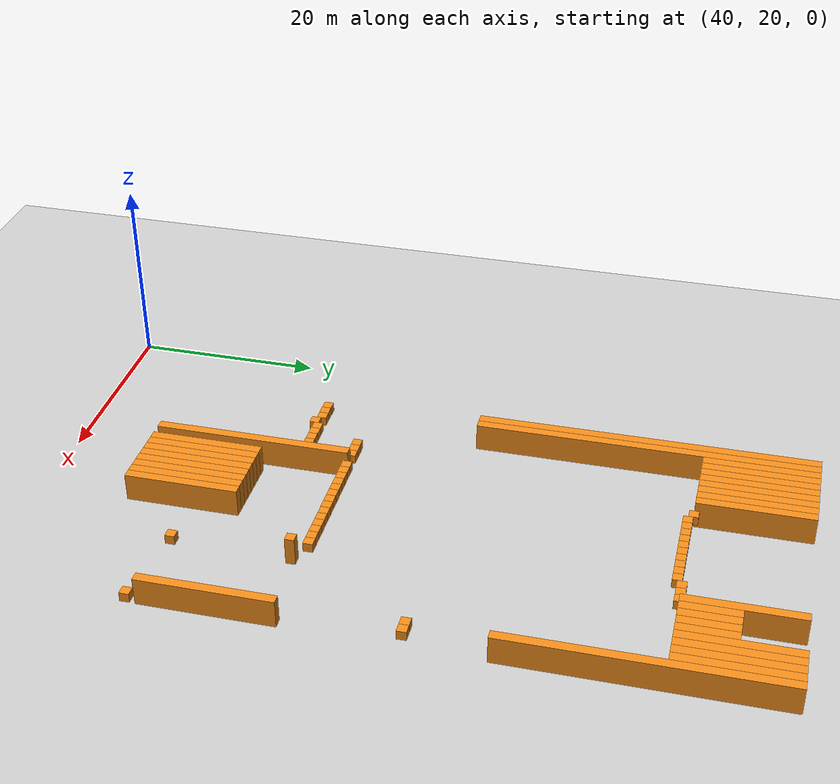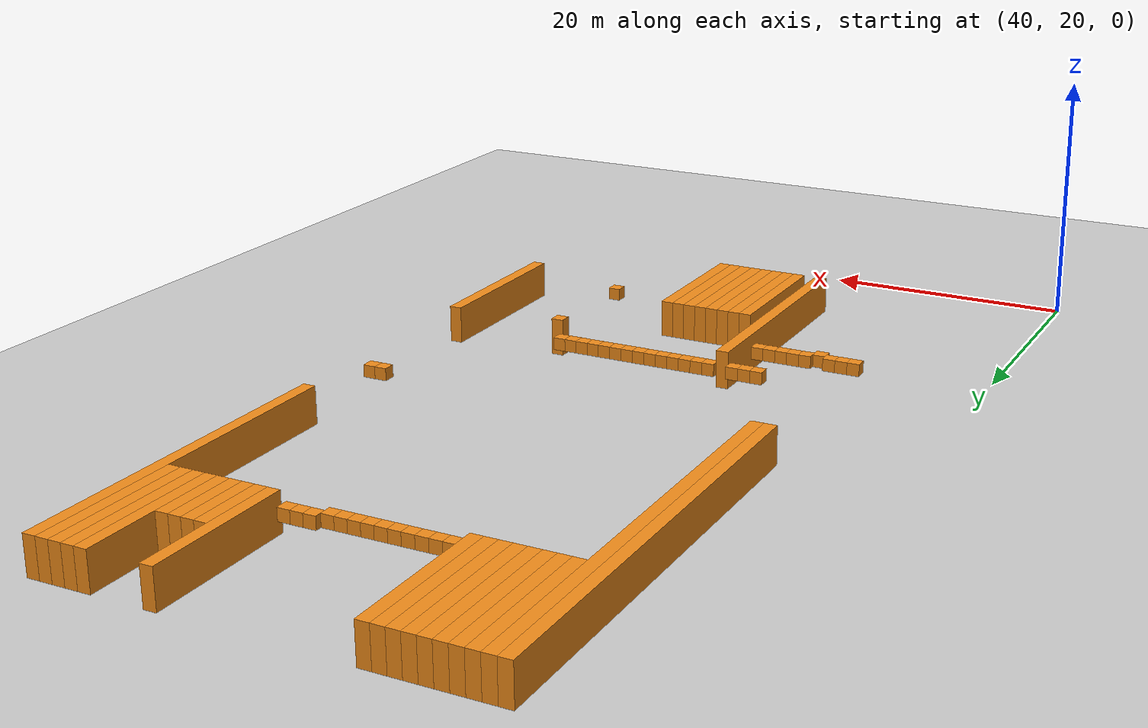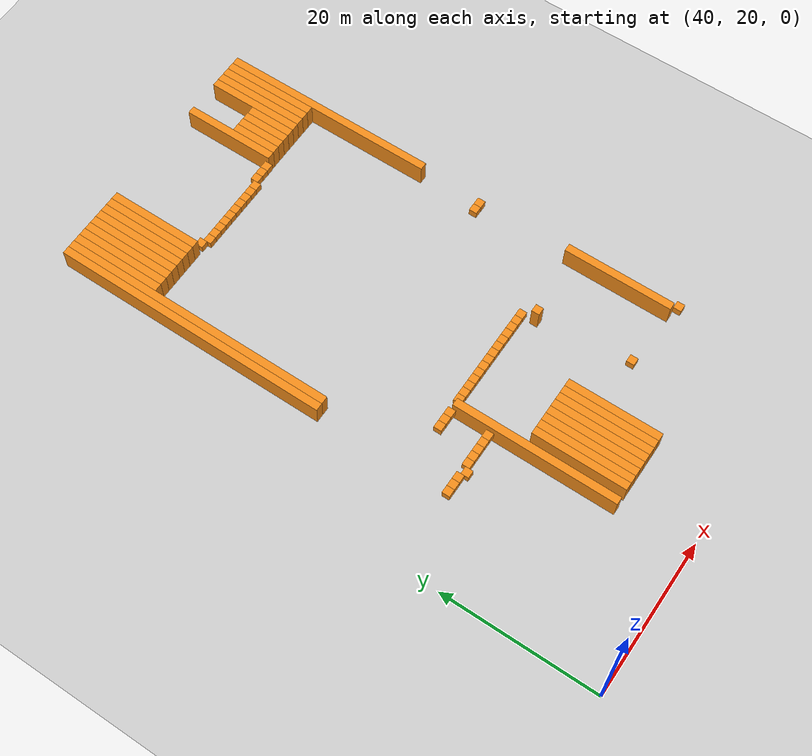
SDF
<sdf version="1.6">
 <world name="default">
  <include><uri>model://ground_plane</uri></include>
  <model name="unit_box_537">
   <pose>49.50    45.00     1.50 0 0 0</pose>
   <static>1</static>
   <link name="link">
    <inertial>
     <mass>5000</mass>
     <inertia><ixx>200</ixx><ixy>0</ixy><ixz>0</ixz><iyy>200</iyy><iyz>0</iyz><izz>200</izz></inertia>
    </inertial>
    <collision name="collision"><geometry><box><size>1 1 1</size></box></geometry></collision>
    <visual name="visual">
     <geometry><box><size>1 1 1</size></box></geometry>
     <material>
      <script><name>Gazebo/Orange</name><uri>file://media/materials/scripts/gazebo.material</uri></script>
     </material>
    </visual>
   </link>
  </model>
  <model name="unit_box_538">
   <pose>49.50    80.00     1.50 0 0 0</pose>
   <static>1</static>
   <link name="link">
    <inertial>
     <mass>5000</mass>
     <inertia><ixx>200</ixx><ixy>0</ixy><ixz>0</ixz><iyy>200</iyy><iyz>0</iyz><izz>200</izz></inertia>
    </inertial>
    <collision name="collision"><geometry><box><size>1 36 3</size></box></geometry></collision>
    <visual name="visual">
     <geometry><box><size>1 36 3</size></box></geometry>
     <material>
      <script><name>Gazebo/Orange</name><uri>file://media/materials/scripts/gazebo.material</uri></script>
     </material>
    </visual>
   </link>
  </model>
  <model name="unit_box_552">
   <pose>50.50    45.00     1.50 0 0 0</pose>
   <static>1</static>
   <link name="link">
    <inertial>
     <mass>5000</mass>
     <inertia><ixx>200</ixx><ixy>0</ixy><ixz>0</ixz><iyy>200</iyy><iyz>0</iyz><izz>200</izz></inertia>
    </inertial>
    <collision name="collision"><geometry><box><size>1 1 1</size></box></geometry></collision>
    <visual name="visual">
     <geometry><box><size>1 1 1</size></box></geometry>
     <material>
      <script><name>Gazebo/Orange</name><uri>file://media/materials/scripts/gazebo.material</uri></script>
     </material>
    </visual>
   </link>
  </model>
  <model name="unit_box_553">
   <pose>50.50    80.00     1.50 0 0 0</pose>
   <static>1</static>
   <link name="link">
    <inertial>
     <mass>5000</mass>
     <inertia><ixx>200</ixx><ixy>0</ixy><ixz>0</ixz><iyy>200</iyy><iyz>0</iyz><izz>200</izz></inertia>
    </inertial>
    <collision name="collision"><geometry><box><size>1 36 3</size></box></geometry></collision>
    <visual name="visual">
     <geometry><box><size>1 36 3</size></box></geometry>
     <material>
      <script><name>Gazebo/Orange</name><uri>file://media/materials/scripts/gazebo.material</uri></script>
     </material>
    </visual>
   </link>
  </model>
  <model name="unit_box_564">
   <pose>51.50    45.00     1.50 0 0 0</pose>
   <static>1</static>
   <link name="link">
    <inertial>
     <mass>5000</mass>
     <inertia><ixx>200</ixx><ixy>0</ixy><ixz>0</ixz><iyy>200</iyy><iyz>0</iyz><izz>200</izz></inertia>
    </inertial>
    <collision name="collision"><geometry><box><size>1 1 1</size></box></geometry></collision>
    <visual name="visual">
     <geometry><box><size>1 1 1</size></box></geometry>
     <material>
      <script><name>Gazebo/Orange</name><uri>file://media/materials/scripts/gazebo.material</uri></script>
     </material>
    </visual>
   </link>
  </model>
  <model name="unit_box_565">
   <pose>51.50    92.00     1.50 0 0 0</pose>
   <static>1</static>
   <link name="link">
    <inertial>
     <mass>5000</mass>
     <inertia><ixx>200</ixx><ixy>0</ixy><ixz>0</ixz><iyy>200</iyy><iyz>0</iyz><izz>200</izz></inertia>
    </inertial>
    <collision name="collision"><geometry><box><size>1 12 3</size></box></geometry></collision>
    <visual name="visual">
     <geometry><box><size>1 12 3</size></box></geometry>
     <material>
      <script><name>Gazebo/Orange</name><uri>file://media/materials/scripts/gazebo.material</uri></script>
     </material>
    </visual>
   </link>
  </model>
  <model name="unit_box_575">
   <pose>52.50    44.50     1.50 0 0 0</pose>
   <static>1</static>
   <link name="link">
    <inertial>
     <mass>5000</mass>
     <inertia><ixx>200</ixx><ixy>0</ixy><ixz>0</ixz><iyy>200</iyy><iyz>0</iyz><izz>200</izz></inertia>
    </inertial>
    <collision name="collision"><geometry><box><size>1 1 1</size></box></geometry></collision>
    <visual name="visual">
     <geometry><box><size>1 1 1</size></box></geometry>
     <material>
      <script><name>Gazebo/Orange</name><uri>file://media/materials/scripts/gazebo.material</uri></script>
     </material>
    </visual>
   </link>
  </model>
  <model name="unit_box_576">
   <pose>52.50    92.00     1.50 0 0 0</pose>
   <static>1</static>
   <link name="link">
    <inertial>
     <mass>5000</mass>
     <inertia><ixx>200</ixx><ixy>0</ixy><ixz>0</ixz><iyy>200</iyy><iyz>0</iyz><izz>200</izz></inertia>
    </inertial>
    <collision name="collision"><geometry><box><size>1 12 3</size></box></geometry></collision>
    <visual name="visual">
     <geometry><box><size>1 12 3</size></box></geometry>
     <material>
      <script><name>Gazebo/Orange</name><uri>file://media/materials/scripts/gazebo.material</uri></script>
     </material>
    </visual>
   </link>
  </model>
  <model name="unit_box_585">
   <pose>53.50    45.00     1.50 0 0 0</pose>
   <static>1</static>
   <link name="link">
    <inertial>
     <mass>5000</mass>
     <inertia><ixx>200</ixx><ixy>0</ixy><ixz>0</ixz><iyy>200</iyy><iyz>0</iyz><izz>200</izz></inertia>
    </inertial>
    <collision name="collision"><geometry><box><size>1 1 1</size></box></geometry></collision>
    <visual name="visual">
     <geometry><box><size>1 1 1</size></box></geometry>
     <material>
      <script><name>Gazebo/Orange</name><uri>file://media/materials/scripts/gazebo.material</uri></script>
     </material>
    </visual>
   </link>
  </model>
  <model name="unit_box_586">
   <pose>53.50    92.00     1.50 0 0 0</pose>
   <static>1</static>
   <link name="link">
    <inertial>
     <mass>5000</mass>
     <inertia><ixx>200</ixx><ixy>0</ixy><ixz>0</ixz><iyy>200</iyy><iyz>0</iyz><izz>200</izz></inertia>
    </inertial>
    <collision name="collision"><geometry><box><size>1 12 3</size></box></geometry></collision>
    <visual name="visual">
     <geometry><box><size>1 12 3</size></box></geometry>
     <material>
      <script><name>Gazebo/Orange</name><uri>file://media/materials/scripts/gazebo.material</uri></script>
     </material>
    </visual>
   </link>
  </model>
  <model name="unit_box_596">
   <pose>54.50    45.00     1.50 0 0 0</pose>
   <static>1</static>
   <link name="link">
    <inertial>
     <mass>5000</mass>
     <inertia><ixx>200</ixx><ixy>0</ixy><ixz>0</ixz><iyy>200</iyy><iyz>0</iyz><izz>200</izz></inertia>
    </inertial>
    <collision name="collision"><geometry><box><size>1 1 1</size></box></geometry></collision>
    <visual name="visual">
     <geometry><box><size>1 1 1</size></box></geometry>
     <material>
      <script><name>Gazebo/Orange</name><uri>file://media/materials/scripts/gazebo.material</uri></script>
     </material>
    </visual>
   </link>
  </model>
  <model name="unit_box_597">
   <pose>54.50    92.00     1.50 0 0 0</pose>
   <static>1</static>
   <link name="link">
    <inertial>
     <mass>5000</mass>
     <inertia><ixx>200</ixx><ixy>0</ixy><ixz>0</ixz><iyy>200</iyy><iyz>0</iyz><izz>200</izz></inertia>
    </inertial>
    <collision name="collision"><geometry><box><size>1 12 3</size></box></geometry></collision>
    <visual name="visual">
     <geometry><box><size>1 12 3</size></box></geometry>
     <material>
      <script><name>Gazebo/Orange</name><uri>file://media/materials/scripts/gazebo.material</uri></script>
     </material>
    </visual>
   </link>
  </model>
  <model name="unit_box_604">
   <pose>55.50    45.00     1.50 0 0 0</pose>
   <static>1</static>
   <link name="link">
    <inertial>
     <mass>5000</mass>
     <inertia><ixx>200</ixx><ixy>0</ixy><ixz>0</ixz><iyy>200</iyy><iyz>0</iyz><izz>200</izz></inertia>
    </inertial>
    <collision name="collision"><geometry><box><size>1 1 1</size></box></geometry></collision>
    <visual name="visual">
     <geometry><box><size>1 1 1</size></box></geometry>
     <material>
      <script><name>Gazebo/Orange</name><uri>file://media/materials/scripts/gazebo.material</uri></script>
     </material>
    </visual>
   </link>
  </model>
  <model name="unit_box_605">
   <pose>55.50    50.00     1.50 0 0 0</pose>
   <static>1</static>
   <link name="link">
    <inertial>
     <mass>5000</mass>
     <inertia><ixx>200</ixx><ixy>0</ixy><ixz>0</ixz><iyy>200</iyy><iyz>0</iyz><izz>200</izz></inertia>
    </inertial>
    <collision name="collision"><geometry><box><size>1 1 1</size></box></geometry></collision>
    <visual name="visual">
     <geometry><box><size>1 1 1</size></box></geometry>
     <material>
      <script><name>Gazebo/Orange</name><uri>file://media/materials/scripts/gazebo.material</uri></script>
     </material>
    </visual>
   </link>
  </model>
  <model name="unit_box_606">
   <pose>55.50    92.00     1.50 0 0 0</pose>
   <static>1</static>
   <link name="link">
    <inertial>
     <mass>5000</mass>
     <inertia><ixx>200</ixx><ixy>0</ixy><ixz>0</ixz><iyy>200</iyy><iyz>0</iyz><izz>200</izz></inertia>
    </inertial>
    <collision name="collision"><geometry><box><size>1 12 3</size></box></geometry></collision>
    <visual name="visual">
     <geometry><box><size>1 12 3</size></box></geometry>
     <material>
      <script><name>Gazebo/Orange</name><uri>file://media/materials/scripts/gazebo.material</uri></script>
     </material>
    </visual>
   </link>
  </model>
  <model name="unit_box_613">
   <pose>56.50    45.00     1.50 0 0 0</pose>
   <static>1</static>
   <link name="link">
    <inertial>
     <mass>5000</mass>
     <inertia><ixx>200</ixx><ixy>0</ixy><ixz>0</ixz><iyy>200</iyy><iyz>0</iyz><izz>200</izz></inertia>
    </inertial>
    <collision name="collision"><geometry><box><size>1 1 1</size></box></geometry></collision>
    <visual name="visual">
     <geometry><box><size>1 1 1</size></box></geometry>
     <material>
      <script><name>Gazebo/Orange</name><uri>file://media/materials/scripts/gazebo.material</uri></script>
     </material>
    </visual>
   </link>
  </model>
  <model name="unit_box_614">
   <pose>56.50    50.00     1.50 0 0 0</pose>
   <static>1</static>
   <link name="link">
    <inertial>
     <mass>5000</mass>
     <inertia><ixx>200</ixx><ixy>0</ixy><ixz>0</ixz><iyy>200</iyy><iyz>0</iyz><izz>200</izz></inertia>
    </inertial>
    <collision name="collision"><geometry><box><size>1 1 1</size></box></geometry></collision>
    <visual name="visual">
     <geometry><box><size>1 1 1</size></box></geometry>
     <material>
      <script><name>Gazebo/Orange</name><uri>file://media/materials/scripts/gazebo.material</uri></script>
     </material>
    </visual>
   </link>
  </model>
  <model name="unit_box_615">
   <pose>56.50    92.00     1.50 0 0 0</pose>
   <static>1</static>
   <link name="link">
    <inertial>
     <mass>5000</mass>
     <inertia><ixx>200</ixx><ixy>0</ixy><ixz>0</ixz><iyy>200</iyy><iyz>0</iyz><izz>200</izz></inertia>
    </inertial>
    <collision name="collision"><geometry><box><size>1 12 3</size></box></geometry></collision>
    <visual name="visual">
     <geometry><box><size>1 12 3</size></box></geometry>
     <material>
      <script><name>Gazebo/Orange</name><uri>file://media/materials/scripts/gazebo.material</uri></script>
     </material>
    </visual>
   </link>
  </model>
  <model name="unit_box_623">
   <pose>57.50    45.00     1.50 0 0 0</pose>
   <static>1</static>
   <link name="link">
    <inertial>
     <mass>5000</mass>
     <inertia><ixx>200</ixx><ixy>0</ixy><ixz>0</ixz><iyy>200</iyy><iyz>0</iyz><izz>200</izz></inertia>
    </inertial>
    <collision name="collision"><geometry><box><size>1 1 1</size></box></geometry></collision>
    <visual name="visual">
     <geometry><box><size>1 1 1</size></box></geometry>
     <material>
      <script><name>Gazebo/Orange</name><uri>file://media/materials/scripts/gazebo.material</uri></script>
     </material>
    </visual>
   </link>
  </model>
  <model name="unit_box_624">
   <pose>57.50    50.00     1.50 0 0 0</pose>
   <static>1</static>
   <link name="link">
    <inertial>
     <mass>5000</mass>
     <inertia><ixx>200</ixx><ixy>0</ixy><ixz>0</ixz><iyy>200</iyy><iyz>0</iyz><izz>200</izz></inertia>
    </inertial>
    <collision name="collision"><geometry><box><size>1 1 1</size></box></geometry></collision>
    <visual name="visual">
     <geometry><box><size>1 1 1</size></box></geometry>
     <material>
      <script><name>Gazebo/Orange</name><uri>file://media/materials/scripts/gazebo.material</uri></script>
     </material>
    </visual>
   </link>
  </model>
  <model name="unit_box_625">
   <pose>57.50    92.00     1.50 0 0 0</pose>
   <static>1</static>
   <link name="link">
    <inertial>
     <mass>5000</mass>
     <inertia><ixx>200</ixx><ixy>0</ixy><ixz>0</ixz><iyy>200</iyy><iyz>0</iyz><izz>200</izz></inertia>
    </inertial>
    <collision name="collision"><geometry><box><size>1 12 3</size></box></geometry></collision>
    <visual name="visual">
     <geometry><box><size>1 12 3</size></box></geometry>
     <material>
      <script><name>Gazebo/Orange</name><uri>file://media/materials/scripts/gazebo.material</uri></script>
     </material>
    </visual>
   </link>
  </model>
  <model name="unit_box_633">
   <pose>58.50    39.50     1.50 0 0 0</pose>
   <static>1</static>
   <link name="link">
    <inertial>
     <mass>5000</mass>
     <inertia><ixx>200</ixx><ixy>0</ixy><ixz>0</ixz><iyy>200</iyy><iyz>0</iyz><izz>200</izz></inertia>
    </inertial>
    <collision name="collision"><geometry><box><size>1 21 3</size></box></geometry></collision>
    <visual name="visual">
     <geometry><box><size>1 21 3</size></box></geometry>
     <material>
      <script><name>Gazebo/Orange</name><uri>file://media/materials/scripts/gazebo.material</uri></script>
     </material>
    </visual>
   </link>
  </model>
  <model name="unit_box_634">
   <pose>58.50    92.00     1.50 0 0 0</pose>
   <static>1</static>
   <link name="link">
    <inertial>
     <mass>5000</mass>
     <inertia><ixx>200</ixx><ixy>0</ixy><ixz>0</ixz><iyy>200</iyy><iyz>0</iyz><izz>200</izz></inertia>
    </inertial>
    <collision name="collision"><geometry><box><size>1 12 3</size></box></geometry></collision>
    <visual name="visual">
     <geometry><box><size>1 12 3</size></box></geometry>
     <material>
      <script><name>Gazebo/Orange</name><uri>file://media/materials/scripts/gazebo.material</uri></script>
     </material>
    </visual>
   </link>
  </model>
  <model name="unit_box_644">
   <pose>59.50    50.00     1.50 0 0 0</pose>
   <static>1</static>
   <link name="link">
    <inertial>
     <mass>5000</mass>
     <inertia><ixx>200</ixx><ixy>0</ixy><ixz>0</ixz><iyy>200</iyy><iyz>0</iyz><izz>200</izz></inertia>
    </inertial>
    <collision name="collision"><geometry><box><size>1 1 1</size></box></geometry></collision>
    <visual name="visual">
     <geometry><box><size>1 1 1</size></box></geometry>
     <material>
      <script><name>Gazebo/Orange</name><uri>file://media/materials/scripts/gazebo.material</uri></script>
     </material>
    </visual>
   </link>
  </model>
  <model name="unit_box_645">
   <pose>59.50    86.00     1.50 0 0 0</pose>
   <static>1</static>
   <link name="link">
    <inertial>
     <mass>5000</mass>
     <inertia><ixx>200</ixx><ixy>0</ixy><ixz>0</ixz><iyy>200</iyy><iyz>0</iyz><izz>200</izz></inertia>
    </inertial>
    <collision name="collision"><geometry><box><size>1 1 1</size></box></geometry></collision>
    <visual name="visual">
     <geometry><box><size>1 1 1</size></box></geometry>
     <material>
      <script><name>Gazebo/Orange</name><uri>file://media/materials/scripts/gazebo.material</uri></script>
     </material>
    </visual>
   </link>
  </model>
  <model name="unit_box_655">
   <pose>60.50    35.00     1.50 0 0 0</pose>
   <static>1</static>
   <link name="link">
    <inertial>
     <mass>5000</mass>
     <inertia><ixx>200</ixx><ixy>0</ixy><ixz>0</ixz><iyy>200</iyy><iyz>0</iyz><izz>200</izz></inertia>
    </inertial>
    <collision name="collision"><geometry><box><size>1 12 3</size></box></geometry></collision>
    <visual name="visual">
     <geometry><box><size>1 12 3</size></box></geometry>
     <material>
      <script><name>Gazebo/Orange</name><uri>file://media/materials/scripts/gazebo.material</uri></script>
     </material>
    </visual>
   </link>
  </model>
  <model name="unit_box_656">
   <pose>60.50    50.00     1.50 0 0 0</pose>
   <static>1</static>
   <link name="link">
    <inertial>
     <mass>5000</mass>
     <inertia><ixx>200</ixx><ixy>0</ixy><ixz>0</ixz><iyy>200</iyy><iyz>0</iyz><izz>200</izz></inertia>
    </inertial>
    <collision name="collision"><geometry><box><size>1 1 1</size></box></geometry></collision>
    <visual name="visual">
     <geometry><box><size>1 1 1</size></box></geometry>
     <material>
      <script><name>Gazebo/Orange</name><uri>file://media/materials/scripts/gazebo.material</uri></script>
     </material>
    </visual>
   </link>
  </model>
  <model name="unit_box_657">
   <pose>60.50    85.50     1.50 0 0 0</pose>
   <static>1</static>
   <link name="link">
    <inertial>
     <mass>5000</mass>
     <inertia><ixx>200</ixx><ixy>0</ixy><ixz>0</ixz><iyy>200</iyy><iyz>0</iyz><izz>200</izz></inertia>
    </inertial>
    <collision name="collision"><geometry><box><size>1 1 1</size></box></geometry></collision>
    <visual name="visual">
     <geometry><box><size>1 1 1</size></box></geometry>
     <material>
      <script><name>Gazebo/Orange</name><uri>file://media/materials/scripts/gazebo.material</uri></script>
     </material>
    </visual>
   </link>
  </model>
  <model name="unit_box_667">
   <pose>61.50    35.00     1.50 0 0 0</pose>
   <static>1</static>
   <link name="link">
    <inertial>
     <mass>5000</mass>
     <inertia><ixx>200</ixx><ixy>0</ixy><ixz>0</ixz><iyy>200</iyy><iyz>0</iyz><izz>200</izz></inertia>
    </inertial>
    <collision name="collision"><geometry><box><size>1 12 3</size></box></geometry></collision>
    <visual name="visual">
     <geometry><box><size>1 12 3</size></box></geometry>
     <material>
      <script><name>Gazebo/Orange</name><uri>file://media/materials/scripts/gazebo.material</uri></script>
     </material>
    </visual>
   </link>
  </model>
  <model name="unit_box_668">
   <pose>61.50    50.00     1.50 0 0 0</pose>
   <static>1</static>
   <link name="link">
    <inertial>
     <mass>5000</mass>
     <inertia><ixx>200</ixx><ixy>0</ixy><ixz>0</ixz><iyy>200</iyy><iyz>0</iyz><izz>200</izz></inertia>
    </inertial>
    <collision name="collision"><geometry><box><size>1 1 1</size></box></geometry></collision>
    <visual name="visual">
     <geometry><box><size>1 1 1</size></box></geometry>
     <material>
      <script><name>Gazebo/Orange</name><uri>file://media/materials/scripts/gazebo.material</uri></script>
     </material>
    </visual>
   </link>
  </model>
  <model name="unit_box_669">
   <pose>61.50    85.50     1.50 0 0 0</pose>
   <static>1</static>
   <link name="link">
    <inertial>
     <mass>5000</mass>
     <inertia><ixx>200</ixx><ixy>0</ixy><ixz>0</ixz><iyy>200</iyy><iyz>0</iyz><izz>200</izz></inertia>
    </inertial>
    <collision name="collision"><geometry><box><size>1 1 1</size></box></geometry></collision>
    <visual name="visual">
     <geometry><box><size>1 1 1</size></box></geometry>
     <material>
      <script><name>Gazebo/Orange</name><uri>file://media/materials/scripts/gazebo.material</uri></script>
     </material>
    </visual>
   </link>
  </model>
  <model name="unit_box_677">
   <pose>62.50    35.00     1.50 0 0 0</pose>
   <static>1</static>
   <link name="link">
    <inertial>
     <mass>5000</mass>
     <inertia><ixx>200</ixx><ixy>0</ixy><ixz>0</ixz><iyy>200</iyy><iyz>0</iyz><izz>200</izz></inertia>
    </inertial>
    <collision name="collision"><geometry><box><size>1 12 3</size></box></geometry></collision>
    <visual name="visual">
     <geometry><box><size>1 12 3</size></box></geometry>
     <material>
      <script><name>Gazebo/Orange</name><uri>file://media/materials/scripts/gazebo.material</uri></script>
     </material>
    </visual>
   </link>
  </model>
  <model name="unit_box_678">
   <pose>62.50    50.00     1.50 0 0 0</pose>
   <static>1</static>
   <link name="link">
    <inertial>
     <mass>5000</mass>
     <inertia><ixx>200</ixx><ixy>0</ixy><ixz>0</ixz><iyy>200</iyy><iyz>0</iyz><izz>200</izz></inertia>
    </inertial>
    <collision name="collision"><geometry><box><size>1 1 1</size></box></geometry></collision>
    <visual name="visual">
     <geometry><box><size>1 1 1</size></box></geometry>
     <material>
      <script><name>Gazebo/Orange</name><uri>file://media/materials/scripts/gazebo.material</uri></script>
     </material>
    </visual>
   </link>
  </model>
  <model name="unit_box_679">
   <pose>62.50    85.50     1.50 0 0 0</pose>
   <static>1</static>
   <link name="link">
    <inertial>
     <mass>5000</mass>
     <inertia><ixx>200</ixx><ixy>0</ixy><ixz>0</ixz><iyy>200</iyy><iyz>0</iyz><izz>200</izz></inertia>
    </inertial>
    <collision name="collision"><geometry><box><size>1 1 1</size></box></geometry></collision>
    <visual name="visual">
     <geometry><box><size>1 1 1</size></box></geometry>
     <material>
      <script><name>Gazebo/Orange</name><uri>file://media/materials/scripts/gazebo.material</uri></script>
     </material>
    </visual>
   </link>
  </model>
  <model name="unit_box_687">
   <pose>63.50    35.00     1.50 0 0 0</pose>
   <static>1</static>
   <link name="link">
    <inertial>
     <mass>5000</mass>
     <inertia><ixx>200</ixx><ixy>0</ixy><ixz>0</ixz><iyy>200</iyy><iyz>0</iyz><izz>200</izz></inertia>
    </inertial>
    <collision name="collision"><geometry><box><size>1 12 3</size></box></geometry></collision>
    <visual name="visual">
     <geometry><box><size>1 12 3</size></box></geometry>
     <material>
      <script><name>Gazebo/Orange</name><uri>file://media/materials/scripts/gazebo.material</uri></script>
     </material>
    </visual>
   </link>
  </model>
  <model name="unit_box_688">
   <pose>63.50    50.00     1.50 0 0 0</pose>
   <static>1</static>
   <link name="link">
    <inertial>
     <mass>5000</mass>
     <inertia><ixx>200</ixx><ixy>0</ixy><ixz>0</ixz><iyy>200</iyy><iyz>0</iyz><izz>200</izz></inertia>
    </inertial>
    <collision name="collision"><geometry><box><size>1 1 1</size></box></geometry></collision>
    <visual name="visual">
     <geometry><box><size>1 1 1</size></box></geometry>
     <material>
      <script><name>Gazebo/Orange</name><uri>file://media/materials/scripts/gazebo.material</uri></script>
     </material>
    </visual>
   </link>
  </model>
  <model name="unit_box_689">
   <pose>63.50    85.50     1.50 0 0 0</pose>
   <static>1</static>
   <link name="link">
    <inertial>
     <mass>5000</mass>
     <inertia><ixx>200</ixx><ixy>0</ixy><ixz>0</ixz><iyy>200</iyy><iyz>0</iyz><izz>200</izz></inertia>
    </inertial>
    <collision name="collision"><geometry><box><size>1 1 1</size></box></geometry></collision>
    <visual name="visual">
     <geometry><box><size>1 1 1</size></box></geometry>
     <material>
      <script><name>Gazebo/Orange</name><uri>file://media/materials/scripts/gazebo.material</uri></script>
     </material>
    </visual>
   </link>
  </model>
  <model name="unit_box_697">
   <pose>64.50    35.00     1.50 0 0 0</pose>
   <static>1</static>
   <link name="link">
    <inertial>
     <mass>5000</mass>
     <inertia><ixx>200</ixx><ixy>0</ixy><ixz>0</ixz><iyy>200</iyy><iyz>0</iyz><izz>200</izz></inertia>
    </inertial>
    <collision name="collision"><geometry><box><size>1 12 3</size></box></geometry></collision>
    <visual name="visual">
     <geometry><box><size>1 12 3</size></box></geometry>
     <material>
      <script><name>Gazebo/Orange</name><uri>file://media/materials/scripts/gazebo.material</uri></script>
     </material>
    </visual>
   </link>
  </model>
  <model name="unit_box_698">
   <pose>64.50    50.00     1.50 0 0 0</pose>
   <static>1</static>
   <link name="link">
    <inertial>
     <mass>5000</mass>
     <inertia><ixx>200</ixx><ixy>0</ixy><ixz>0</ixz><iyy>200</iyy><iyz>0</iyz><izz>200</izz></inertia>
    </inertial>
    <collision name="collision"><geometry><box><size>1 1 1</size></box></geometry></collision>
    <visual name="visual">
     <geometry><box><size>1 1 1</size></box></geometry>
     <material>
      <script><name>Gazebo/Orange</name><uri>file://media/materials/scripts/gazebo.material</uri></script>
     </material>
    </visual>
   </link>
  </model>
  <model name="unit_box_699">
   <pose>64.50    85.50     1.50 0 0 0</pose>
   <static>1</static>
   <link name="link">
    <inertial>
     <mass>5000</mass>
     <inertia><ixx>200</ixx><ixy>0</ixy><ixz>0</ixz><iyy>200</iyy><iyz>0</iyz><izz>200</izz></inertia>
    </inertial>
    <collision name="collision"><geometry><box><size>1 1 1</size></box></geometry></collision>
    <visual name="visual">
     <geometry><box><size>1 1 1</size></box></geometry>
     <material>
      <script><name>Gazebo/Orange</name><uri>file://media/materials/scripts/gazebo.material</uri></script>
     </material>
    </visual>
   </link>
  </model>
  <model name="unit_box_706">
   <pose>65.50    35.00     1.50 0 0 0</pose>
   <static>1</static>
   <link name="link">
    <inertial>
     <mass>5000</mass>
     <inertia><ixx>200</ixx><ixy>0</ixy><ixz>0</ixz><iyy>200</iyy><iyz>0</iyz><izz>200</izz></inertia>
    </inertial>
    <collision name="collision"><geometry><box><size>1 12 3</size></box></geometry></collision>
    <visual name="visual">
     <geometry><box><size>1 12 3</size></box></geometry>
     <material>
      <script><name>Gazebo/Orange</name><uri>file://media/materials/scripts/gazebo.material</uri></script>
     </material>
    </visual>
   </link>
  </model>
  <model name="unit_box_707">
   <pose>65.50    50.00     1.50 0 0 0</pose>
   <static>1</static>
   <link name="link">
    <inertial>
     <mass>5000</mass>
     <inertia><ixx>200</ixx><ixy>0</ixy><ixz>0</ixz><iyy>200</iyy><iyz>0</iyz><izz>200</izz></inertia>
    </inertial>
    <collision name="collision"><geometry><box><size>1 1 1</size></box></geometry></collision>
    <visual name="visual">
     <geometry><box><size>1 1 1</size></box></geometry>
     <material>
      <script><name>Gazebo/Orange</name><uri>file://media/materials/scripts/gazebo.material</uri></script>
     </material>
    </visual>
   </link>
  </model>
  <model name="unit_box_708">
   <pose>65.50    85.50     1.50 0 0 0</pose>
   <static>1</static>
   <link name="link">
    <inertial>
     <mass>5000</mass>
     <inertia><ixx>200</ixx><ixy>0</ixy><ixz>0</ixz><iyy>200</iyy><iyz>0</iyz><izz>200</izz></inertia>
    </inertial>
    <collision name="collision"><geometry><box><size>1 1 1</size></box></geometry></collision>
    <visual name="visual">
     <geometry><box><size>1 1 1</size></box></geometry>
     <material>
      <script><name>Gazebo/Orange</name><uri>file://media/materials/scripts/gazebo.material</uri></script>
     </material>
    </visual>
   </link>
  </model>
  <model name="unit_box_715">
   <pose>66.50    35.00     1.50 0 0 0</pose>
   <static>1</static>
   <link name="link">
    <inertial>
     <mass>5000</mass>
     <inertia><ixx>200</ixx><ixy>0</ixy><ixz>0</ixz><iyy>200</iyy><iyz>0</iyz><izz>200</izz></inertia>
    </inertial>
    <collision name="collision"><geometry><box><size>1 12 3</size></box></geometry></collision>
    <visual name="visual">
     <geometry><box><size>1 12 3</size></box></geometry>
     <material>
      <script><name>Gazebo/Orange</name><uri>file://media/materials/scripts/gazebo.material</uri></script>
     </material>
    </visual>
   </link>
  </model>
  <model name="unit_box_716">
   <pose>66.50    50.00     1.50 0 0 0</pose>
   <static>1</static>
   <link name="link">
    <inertial>
     <mass>5000</mass>
     <inertia><ixx>200</ixx><ixy>0</ixy><ixz>0</ixz><iyy>200</iyy><iyz>0</iyz><izz>200</izz></inertia>
    </inertial>
    <collision name="collision"><geometry><box><size>1 1 1</size></box></geometry></collision>
    <visual name="visual">
     <geometry><box><size>1 1 1</size></box></geometry>
     <material>
      <script><name>Gazebo/Orange</name><uri>file://media/materials/scripts/gazebo.material</uri></script>
     </material>
    </visual>
   </link>
  </model>
  <model name="unit_box_717">
   <pose>66.50    85.50     1.50 0 0 0</pose>
   <static>1</static>
   <link name="link">
    <inertial>
     <mass>5000</mass>
     <inertia><ixx>200</ixx><ixy>0</ixy><ixz>0</ixz><iyy>200</iyy><iyz>0</iyz><izz>200</izz></inertia>
    </inertial>
    <collision name="collision"><geometry><box><size>1 1 1</size></box></geometry></collision>
    <visual name="visual">
     <geometry><box><size>1 1 1</size></box></geometry>
     <material>
      <script><name>Gazebo/Orange</name><uri>file://media/materials/scripts/gazebo.material</uri></script>
     </material>
    </visual>
   </link>
  </model>
  <model name="unit_box_724">
   <pose>67.50    35.00     1.50 0 0 0</pose>
   <static>1</static>
   <link name="link">
    <inertial>
     <mass>5000</mass>
     <inertia><ixx>200</ixx><ixy>0</ixy><ixz>0</ixz><iyy>200</iyy><iyz>0</iyz><izz>200</izz></inertia>
    </inertial>
    <collision name="collision"><geometry><box><size>1 12 3</size></box></geometry></collision>
    <visual name="visual">
     <geometry><box><size>1 12 3</size></box></geometry>
     <material>
      <script><name>Gazebo/Orange</name><uri>file://media/materials/scripts/gazebo.material</uri></script>
     </material>
    </visual>
   </link>
  </model>
  <model name="unit_box_725">
   <pose>67.50    50.00     1.50 0 0 0</pose>
   <static>1</static>
   <link name="link">
    <inertial>
     <mass>5000</mass>
     <inertia><ixx>200</ixx><ixy>0</ixy><ixz>0</ixz><iyy>200</iyy><iyz>0</iyz><izz>200</izz></inertia>
    </inertial>
    <collision name="collision"><geometry><box><size>1 1 1</size></box></geometry></collision>
    <visual name="visual">
     <geometry><box><size>1 1 1</size></box></geometry>
     <material>
      <script><name>Gazebo/Orange</name><uri>file://media/materials/scripts/gazebo.material</uri></script>
     </material>
    </visual>
   </link>
  </model>
  <model name="unit_box_726">
   <pose>67.50    85.50     1.50 0 0 0</pose>
   <static>1</static>
   <link name="link">
    <inertial>
     <mass>5000</mass>
     <inertia><ixx>200</ixx><ixy>0</ixy><ixz>0</ixz><iyy>200</iyy><iyz>0</iyz><izz>200</izz></inertia>
    </inertial>
    <collision name="collision"><geometry><box><size>1 1 1</size></box></geometry></collision>
    <visual name="visual">
     <geometry><box><size>1 1 1</size></box></geometry>
     <material>
      <script><name>Gazebo/Orange</name><uri>file://media/materials/scripts/gazebo.material</uri></script>
     </material>
    </visual>
   </link>
  </model>
  <model name="unit_box_734">
   <pose>68.50    50.00     1.50 0 0 0</pose>
   <static>1</static>
   <link name="link">
    <inertial>
     <mass>5000</mass>
     <inertia><ixx>200</ixx><ixy>0</ixy><ixz>0</ixz><iyy>200</iyy><iyz>0</iyz><izz>200</izz></inertia>
    </inertial>
    <collision name="collision"><geometry><box><size>1 1 1</size></box></geometry></collision>
    <visual name="visual">
     <geometry><box><size>1 1 1</size></box></geometry>
     <material>
      <script><name>Gazebo/Orange</name><uri>file://media/materials/scripts/gazebo.material</uri></script>
     </material>
    </visual>
   </link>
  </model>
  <model name="unit_box_735">
   <pose>68.50    85.50     1.50 0 0 0</pose>
   <static>1</static>
   <link name="link">
    <inertial>
     <mass>5000</mass>
     <inertia><ixx>200</ixx><ixy>0</ixy><ixz>0</ixz><iyy>200</iyy><iyz>0</iyz><izz>200</izz></inertia>
    </inertial>
    <collision name="collision"><geometry><box><size>1 1 1</size></box></geometry></collision>
    <visual name="visual">
     <geometry><box><size>1 1 1</size></box></geometry>
     <material>
      <script><name>Gazebo/Orange</name><uri>file://media/materials/scripts/gazebo.material</uri></script>
     </material>
    </visual>
   </link>
  </model>
  <model name="unit_box_744">
   <pose>69.50    50.00     1.50 0 0 0</pose>
   <static>1</static>
   <link name="link">
    <inertial>
     <mass>5000</mass>
     <inertia><ixx>200</ixx><ixy>0</ixy><ixz>0</ixz><iyy>200</iyy><iyz>0</iyz><izz>200</izz></inertia>
    </inertial>
    <collision name="collision"><geometry><box><size>1 1 1</size></box></geometry></collision>
    <visual name="visual">
     <geometry><box><size>1 1 1</size></box></geometry>
     <material>
      <script><name>Gazebo/Orange</name><uri>file://media/materials/scripts/gazebo.material</uri></script>
     </material>
    </visual>
   </link>
  </model>
  <model name="unit_box_745">
   <pose>69.50    85.50     1.50 0 0 0</pose>
   <static>1</static>
   <link name="link">
    <inertial>
     <mass>5000</mass>
     <inertia><ixx>200</ixx><ixy>0</ixy><ixz>0</ixz><iyy>200</iyy><iyz>0</iyz><izz>200</izz></inertia>
    </inertial>
    <collision name="collision"><geometry><box><size>1 1 1</size></box></geometry></collision>
    <visual name="visual">
     <geometry><box><size>1 1 1</size></box></geometry>
     <material>
      <script><name>Gazebo/Orange</name><uri>file://media/materials/scripts/gazebo.material</uri></script>
     </material>
    </visual>
   </link>
  </model>
  <model name="unit_box_756">
   <pose>70.50    50.00     1.50 0 0 0</pose>
   <static>1</static>
   <link name="link">
    <inertial>
     <mass>5000</mass>
     <inertia><ixx>200</ixx><ixy>0</ixy><ixz>0</ixz><iyy>200</iyy><iyz>0</iyz><izz>200</izz></inertia>
    </inertial>
    <collision name="collision"><geometry><box><size>1 1 1</size></box></geometry></collision>
    <visual name="visual">
     <geometry><box><size>1 1 1</size></box></geometry>
     <material>
      <script><name>Gazebo/Orange</name><uri>file://media/materials/scripts/gazebo.material</uri></script>
     </material>
    </visual>
   </link>
  </model>
  <model name="unit_box_757">
   <pose>70.50    86.00     1.50 0 0 0</pose>
   <static>1</static>
   <link name="link">
    <inertial>
     <mass>5000</mass>
     <inertia><ixx>200</ixx><ixy>0</ixy><ixz>0</ixz><iyy>200</iyy><iyz>0</iyz><izz>200</izz></inertia>
    </inertial>
    <collision name="collision"><geometry><box><size>1 1 1</size></box></geometry></collision>
    <visual name="visual">
     <geometry><box><size>1 1 1</size></box></geometry>
     <material>
      <script><name>Gazebo/Orange</name><uri>file://media/materials/scripts/gazebo.material</uri></script>
     </material>
    </visual>
   </link>
  </model>
  <model name="unit_box_767">
   <pose>71.50    50.00     1.50 0 0 0</pose>
   <static>1</static>
   <link name="link">
    <inertial>
     <mass>5000</mass>
     <inertia><ixx>200</ixx><ixy>0</ixy><ixz>0</ixz><iyy>200</iyy><iyz>0</iyz><izz>200</izz></inertia>
    </inertial>
    <collision name="collision"><geometry><box><size>1 1 1</size></box></geometry></collision>
    <visual name="visual">
     <geometry><box><size>1 1 1</size></box></geometry>
     <material>
      <script><name>Gazebo/Orange</name><uri>file://media/materials/scripts/gazebo.material</uri></script>
     </material>
    </visual>
   </link>
  </model>
  <model name="unit_box_768">
   <pose>71.50    86.00     1.50 0 0 0</pose>
   <static>1</static>
   <link name="link">
    <inertial>
     <mass>5000</mass>
     <inertia><ixx>200</ixx><ixy>0</ixy><ixz>0</ixz><iyy>200</iyy><iyz>0</iyz><izz>200</izz></inertia>
    </inertial>
    <collision name="collision"><geometry><box><size>1 1 1</size></box></geometry></collision>
    <visual name="visual">
     <geometry><box><size>1 1 1</size></box></geometry>
     <material>
      <script><name>Gazebo/Orange</name><uri>file://media/materials/scripts/gazebo.material</uri></script>
     </material>
    </visual>
   </link>
  </model>
  <model name="unit_box_778">
   <pose>72.50    50.00     1.50 0 0 0</pose>
   <static>1</static>
   <link name="link">
    <inertial>
     <mass>5000</mass>
     <inertia><ixx>200</ixx><ixy>0</ixy><ixz>0</ixz><iyy>200</iyy><iyz>0</iyz><izz>200</izz></inertia>
    </inertial>
    <collision name="collision"><geometry><box><size>1 1 1</size></box></geometry></collision>
    <visual name="visual">
     <geometry><box><size>1 1 1</size></box></geometry>
     <material>
      <script><name>Gazebo/Orange</name><uri>file://media/materials/scripts/gazebo.material</uri></script>
     </material>
    </visual>
   </link>
  </model>
  <model name="unit_box_779">
   <pose>72.50    86.00     1.50 0 0 0</pose>
   <static>1</static>
   <link name="link">
    <inertial>
     <mass>5000</mass>
     <inertia><ixx>200</ixx><ixy>0</ixy><ixz>0</ixz><iyy>200</iyy><iyz>0</iyz><izz>200</izz></inertia>
    </inertial>
    <collision name="collision"><geometry><box><size>1 1 1</size></box></geometry></collision>
    <visual name="visual">
     <geometry><box><size>1 1 1</size></box></geometry>
     <material>
      <script><name>Gazebo/Orange</name><uri>file://media/materials/scripts/gazebo.material</uri></script>
     </material>
    </visual>
   </link>
  </model>
  <model name="unit_box_787">
   <pose>73.50    48.50     1.50 0 0 0</pose>
   <static>1</static>
   <link name="link">
    <inertial>
     <mass>5000</mass>
     <inertia><ixx>200</ixx><ixy>0</ixy><ixz>0</ixz><iyy>200</iyy><iyz>0</iyz><izz>200</izz></inertia>
    </inertial>
    <collision name="collision"><geometry><box><size>1 1 3</size></box></geometry></collision>
    <visual name="visual">
     <geometry><box><size>1 1 3</size></box></geometry>
     <material>
      <script><name>Gazebo/Orange</name><uri>file://media/materials/scripts/gazebo.material</uri></script>
     </material>
    </visual>
   </link>
  </model>
  <model name="unit_box_788">
   <pose>73.50    92.00     1.50 0 0 0</pose>
   <static>1</static>
   <link name="link">
    <inertial>
     <mass>5000</mass>
     <inertia><ixx>200</ixx><ixy>0</ixy><ixz>0</ixz><iyy>200</iyy><iyz>0</iyz><izz>200</izz></inertia>
    </inertial>
    <collision name="collision"><geometry><box><size>1 12 3</size></box></geometry></collision>
    <visual name="visual">
     <geometry><box><size>1 12 3</size></box></geometry>
     <material>
      <script><name>Gazebo/Orange</name><uri>file://media/materials/scripts/gazebo.material</uri></script>
     </material>
    </visual>
   </link>
  </model>
  <model name="unit_box_794">
   <pose>74.50    36.50     1.50 0 0 0</pose>
   <static>1</static>
   <link name="link">
    <inertial>
     <mass>5000</mass>
     <inertia><ixx>200</ixx><ixy>0</ixy><ixz>0</ixz><iyy>200</iyy><iyz>0</iyz><izz>200</izz></inertia>
    </inertial>
    <collision name="collision"><geometry><box><size>1 1 1</size></box></geometry></collision>
    <visual name="visual">
     <geometry><box><size>1 1 1</size></box></geometry>
     <material>
      <script><name>Gazebo/Orange</name><uri>file://media/materials/scripts/gazebo.material</uri></script>
     </material>
    </visual>
   </link>
  </model>
  <model name="unit_box_795">
   <pose>74.50    89.00     1.50 0 0 0</pose>
   <static>1</static>
   <link name="link">
    <inertial>
     <mass>5000</mass>
     <inertia><ixx>200</ixx><ixy>0</ixy><ixz>0</ixz><iyy>200</iyy><iyz>0</iyz><izz>200</izz></inertia>
    </inertial>
    <collision name="collision"><geometry><box><size>1 6 3</size></box></geometry></collision>
    <visual name="visual">
     <geometry><box><size>1 6 3</size></box></geometry>
     <material>
      <script><name>Gazebo/Orange</name><uri>file://media/materials/scripts/gazebo.material</uri></script>
     </material>
    </visual>
   </link>
  </model>
  <model name="unit_box_801">
   <pose>75.50    89.00     1.50 0 0 0</pose>
   <static>1</static>
   <link name="link">
    <inertial>
     <mass>5000</mass>
     <inertia><ixx>200</ixx><ixy>0</ixy><ixz>0</ixz><iyy>200</iyy><iyz>0</iyz><izz>200</izz></inertia>
    </inertial>
    <collision name="collision"><geometry><box><size>1 6 3</size></box></geometry></collision>
    <visual name="visual">
     <geometry><box><size>1 6 3</size></box></geometry>
     <material>
      <script><name>Gazebo/Orange</name><uri>file://media/materials/scripts/gazebo.material</uri></script>
     </material>
    </visual>
   </link>
  </model>
  <model name="unit_box_807">
   <pose>76.50    89.00     1.50 0 0 0</pose>
   <static>1</static>
   <link name="link">
    <inertial>
     <mass>5000</mass>
     <inertia><ixx>200</ixx><ixy>0</ixy><ixz>0</ixz><iyy>200</iyy><iyz>0</iyz><izz>200</izz></inertia>
    </inertial>
    <collision name="collision"><geometry><box><size>1 6 3</size></box></geometry></collision>
    <visual name="visual">
     <geometry><box><size>1 6 3</size></box></geometry>
     <material>
      <script><name>Gazebo/Orange</name><uri>file://media/materials/scripts/gazebo.material</uri></script>
     </material>
    </visual>
   </link>
  </model>
  <model name="unit_box_813">
   <pose>77.50    89.00     1.50 0 0 0</pose>
   <static>1</static>
   <link name="link">
    <inertial>
     <mass>5000</mass>
     <inertia><ixx>200</ixx><ixy>0</ixy><ixz>0</ixz><iyy>200</iyy><iyz>0</iyz><izz>200</izz></inertia>
    </inertial>
    <collision name="collision"><geometry><box><size>1 6 3</size></box></geometry></collision>
    <visual name="visual">
     <geometry><box><size>1 6 3</size></box></geometry>
     <material>
      <script><name>Gazebo/Orange</name><uri>file://media/materials/scripts/gazebo.material</uri></script>
     </material>
    </visual>
   </link>
  </model>
  <model name="unit_box_819">
   <pose>78.50    92.00     1.50 0 0 0</pose>
   <static>1</static>
   <link name="link">
    <inertial>
     <mass>5000</mass>
     <inertia><ixx>200</ixx><ixy>0</ixy><ixz>0</ixz><iyy>200</iyy><iyz>0</iyz><izz>200</izz></inertia>
    </inertial>
    <collision name="collision"><geometry><box><size>1 12 3</size></box></geometry></collision>
    <visual name="visual">
     <geometry><box><size>1 12 3</size></box></geometry>
     <material>
      <script><name>Gazebo/Orange</name><uri>file://media/materials/scripts/gazebo.material</uri></script>
     </material>
    </visual>
   </link>
  </model>
  <model name="unit_box_826">
   <pose>79.50    92.00     1.50 0 0 0</pose>
   <static>1</static>
   <link name="link">
    <inertial>
     <mass>5000</mass>
     <inertia><ixx>200</ixx><ixy>0</ixy><ixz>0</ixz><iyy>200</iyy><iyz>0</iyz><izz>200</izz></inertia>
    </inertial>
    <collision name="collision"><geometry><box><size>1 12 3</size></box></geometry></collision>
    <visual name="visual">
     <geometry><box><size>1 12 3</size></box></geometry>
     <material>
      <script><name>Gazebo/Orange</name><uri>file://media/materials/scripts/gazebo.material</uri></script>
     </material>
    </visual>
   </link>
  </model>
  <model name="unit_box_833">
   <pose>80.50    92.00     1.50 0 0 0</pose>
   <static>1</static>
   <link name="link">
    <inertial>
     <mass>5000</mass>
     <inertia><ixx>200</ixx><ixy>0</ixy><ixz>0</ixz><iyy>200</iyy><iyz>0</iyz><izz>200</izz></inertia>
    </inertial>
    <collision name="collision"><geometry><box><size>1 12 3</size></box></geometry></collision>
    <visual name="visual">
     <geometry><box><size>1 12 3</size></box></geometry>
     <material>
      <script><name>Gazebo/Orange</name><uri>file://media/materials/scripts/gazebo.material</uri></script>
     </material>
    </visual>
   </link>
  </model>
  <model name="unit_box_840">
   <pose>81.50    62.00     1.50 0 0 0</pose>
   <static>1</static>
   <link name="link">
    <inertial>
     <mass>5000</mass>
     <inertia><ixx>200</ixx><ixy>0</ixy><ixz>0</ixz><iyy>200</iyy><iyz>0</iyz><izz>200</izz></inertia>
    </inertial>
    <collision name="collision"><geometry><box><size>1 1 1</size></box></geometry></collision>
    <visual name="visual">
     <geometry><box><size>1 1 1</size></box></geometry>
     <material>
      <script><name>Gazebo/Orange</name><uri>file://media/materials/scripts/gazebo.material</uri></script>
     </material>
    </visual>
   </link>
  </model>
  <model name="unit_box_841">
   <pose>81.50    92.00     1.50 0 0 0</pose>
   <static>1</static>
   <link name="link">
    <inertial>
     <mass>5000</mass>
     <inertia><ixx>200</ixx><ixy>0</ixy><ixz>0</ixz><iyy>200</iyy><iyz>0</iyz><izz>200</izz></inertia>
    </inertial>
    <collision name="collision"><geometry><box><size>1 12 3</size></box></geometry></collision>
    <visual name="visual">
     <geometry><box><size>1 12 3</size></box></geometry>
     <material>
      <script><name>Gazebo/Orange</name><uri>file://media/materials/scripts/gazebo.material</uri></script>
     </material>
    </visual>
   </link>
  </model>
  <model name="unit_box_856">
   <pose>82.50    43.00     1.50 0 0 0</pose>
   <static>1</static>
   <link name="link">
    <inertial>
     <mass>5000</mass>
     <inertia><ixx>200</ixx><ixy>0</ixy><ixz>0</ixz><iyy>200</iyy><iyz>0</iyz><izz>200</izz></inertia>
    </inertial>
    <collision name="collision"><geometry><box><size>1 14 3</size></box></geometry></collision>
    <visual name="visual">
     <geometry><box><size>1 14 3</size></box></geometry>
     <material>
      <script><name>Gazebo/Orange</name><uri>file://media/materials/scripts/gazebo.material</uri></script>
     </material>
    </visual>
   </link>
  </model>
  <model name="unit_box_857">
   <pose>82.50    62.00     1.50 0 0 0</pose>
   <static>1</static>
   <link name="link">
    <inertial>
     <mass>5000</mass>
     <inertia><ixx>200</ixx><ixy>0</ixy><ixz>0</ixz><iyy>200</iyy><iyz>0</iyz><izz>200</izz></inertia>
    </inertial>
    <collision name="collision"><geometry><box><size>1 1 1</size></box></geometry></collision>
    <visual name="visual">
     <geometry><box><size>1 1 1</size></box></geometry>
     <material>
      <script><name>Gazebo/Orange</name><uri>file://media/materials/scripts/gazebo.material</uri></script>
     </material>
    </visual>
   </link>
  </model>
  <model name="unit_box_858">
   <pose>82.50    84.00     1.50 0 0 0</pose>
   <static>1</static>
   <link name="link">
    <inertial>
     <mass>5000</mass>
     <inertia><ixx>200</ixx><ixy>0</ixy><ixz>0</ixz><iyy>200</iyy><iyz>0</iyz><izz>200</izz></inertia>
    </inertial>
    <collision name="collision"><geometry><box><size>1 28 3</size></box></geometry></collision>
    <visual name="visual">
     <geometry><box><size>1 28 3</size></box></geometry>
     <material>
      <script><name>Gazebo/Orange</name><uri>file://media/materials/scripts/gazebo.material</uri></script>
     </material>
    </visual>
   </link>
  </model>
  <model name="unit_box_869">
   <pose>83.50    35.50     1.50 0 0 0</pose>
   <static>1</static>
   <link name="link">
    <inertial>
     <mass>5000</mass>
     <inertia><ixx>200</ixx><ixy>0</ixy><ixz>0</ixz><iyy>200</iyy><iyz>0</iyz><izz>200</izz></inertia>
    </inertial>
    <collision name="collision"><geometry><box><size>1 1 1</size></box></geometry></collision>
    <visual name="visual">
     <geometry><box><size>1 1 1</size></box></geometry>
     <material>
      <script><name>Gazebo/Orange</name><uri>file://media/materials/scripts/gazebo.material</uri></script>
     </material>
    </visual>
   </link>
  </model>
 </world>
</sdf>
